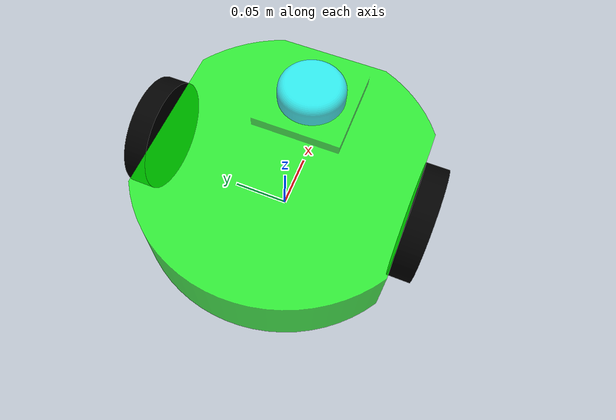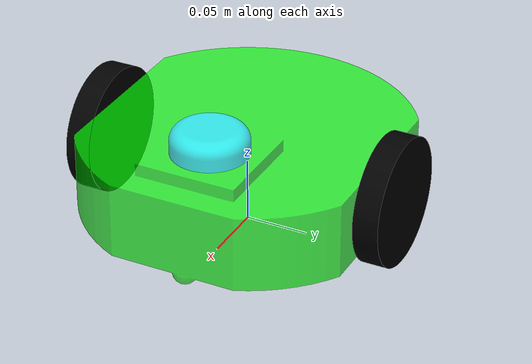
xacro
<?xml version="1.0" ?>
<robot name="tsbenzbot" xmlns:xacro="http://www.ros.org/wiki/xacro">

<xacro:include filename="$(find tsbenzbot_description)/urdf/materials.xacro" />
<xacro:include filename="$(find tsbenzbot_description)/urdf/tsbenzbot.trans" />
<xacro:include filename="$(find tsbenzbot_description)/urdf/tsbenzbot.gazebo" />

<link name="base_link">
  <inertial>
    <origin rpy="0 0 0" xyz="-0.0004048792431578201 0.0 0.05061342669444969"/>
    <mass value="4.266982945407815"/>
    <inertia ixx="0.016096" ixy="-0.0" ixz="-0.000195" iyy="0.019904" iyz="0.0" izz="0.033237"/>
  </inertial>
  <visual>
    <origin rpy="0 0 0" xyz="0 0 0"/>
    <geometry>
      <mesh filename="package://tsbenzbot_description/meshes/base_link.stl" scale="0.001 0.001 0.001"/>
    </geometry>
    <material name="lime"/>
  </visual>
  <collision>
    <origin rpy="0 0 0" xyz="0 0 0"/>
    <geometry>
      <mesh filename="package://tsbenzbot_description/meshes/base_link.stl" scale="0.001 0.001 0.001"/>
    </geometry>
  </collision>
</link>

<link name="r_1">
  <inertial>
    <origin rpy="0 0 0" xyz="-7.237528875152536e-18 -0.009999999999999995 -1.3877787807814457e-17"/>
    <mass value="1.2330751165339937"/>
    <inertia ixx="0.000812" ixy="0.0" ixz="-0.0" iyy="0.001541" iyz="0.0" izz="0.000812"/>
  </inertial>
  <visual>
    <origin rpy="0 0 0" xyz="0.0 0.11 -0.05"/>
    <geometry>
      <mesh filename="package://tsbenzbot_description/meshes/r_1.stl" scale="0.001 0.001 0.001"/>
    </geometry>
    <material name="black"/>
  </visual>
  <collision>
    <origin rpy="0 0 0" xyz="0.0 0.11 -0.05"/>
    <geometry>
      <mesh filename="package://tsbenzbot_description/meshes/r_1.stl" scale="0.001 0.001 0.001"/>
    </geometry>
  </collision>
</link>

<link name="l_1">
  <inertial>
    <origin rpy="0 0 0" xyz="-7.237528875152536e-18 0.009999999999999995 -1.3877787807814457e-17"/>
    <mass value="1.2330751165339937"/>
    <inertia ixx="0.000812" ixy="0.0" ixz="-0.0" iyy="0.001541" iyz="-0.0" izz="0.000812"/>
  </inertial>
  <visual>
    <origin rpy="0 0 0" xyz="-0.0 -0.11 -0.05"/>
    <geometry>
      <mesh filename="package://tsbenzbot_description/meshes/l_1.stl" scale="0.001 0.001 0.001"/>
    </geometry>
    <material name="black"/>
  </visual>
  <collision>
    <origin rpy="0 0 0" xyz="-0.0 -0.11 -0.05"/>
    <geometry>
      <mesh filename="package://tsbenzbot_description/meshes/l_1.stl" scale="0.001 0.001 0.001"/>
    </geometry>
  </collision>
</link>

<link name="lidar_1">
  <inertial>
    <origin rpy="0 0 0" xyz="-6.938893903907228e-18 -5.38241998862892e-18 0.009454633195977669"/>
    <mass value="0.4145169264011764"/>
    <inertia ixx="0.000101" ixy="-0.0" ixz="-0.0" iyy="0.000101" iyz="-0.0" izz="0.000177"/>
  </inertial>
  <visual>
    <origin rpy="0 0 0" xyz="-0.06 -0.0 -0.09"/>
    <geometry>
      <mesh filename="package://tsbenzbot_description/meshes/lidar_1.stl" scale="0.001 0.001 0.001"/>
    </geometry>
    <material name="aqua"/>
  </visual>
  <collision>
    <origin rpy="0 0 0" xyz="-0.06 -0.0 -0.09"/>
    <geometry>
      <mesh filename="package://tsbenzbot_description/meshes/lidar_1.stl" scale="0.001 0.001 0.001"/>
    </geometry>
  </collision>
</link>

<gazebo reference="base_link">
<material>Gazebo/Green</material>
</gazebo>

<gazebo reference="l_1">
<material>Gazebo/Black</material>
</gazebo>

<gazebo reference="r_1">
<material>Gazebo/Black</material>
</gazebo>

<gazebo reference="lidar_1">
<material>Gazebo/SkyBlue</material>
</gazebo>

<joint name="Rev1" type="continuous">
  <origin rpy="0 0 0" xyz="0.0 -0.11 0.05"/>
  <parent link="base_link"/>
  <child link="r_1"/>
  <axis xyz="0.0 1.0 0.0"/>
</joint>

<joint name="Rev2" type="continuous">
  <origin rpy="0 0 0" xyz="0.0 0.11 0.05"/>
  <parent link="base_link"/>
  <child link="l_1"/>
  <axis xyz="0.0 1.0 0.0"/>
</joint>

<joint name="Rigid3" type="fixed">
  <origin rpy="0 0 0" xyz="0.06 0.0 0.09"/>
  <parent link="base_link"/>
  <child link="lidar_1"/>
</joint>

</robot>

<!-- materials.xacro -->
<robot name="tsbenzbot" xmlns:xacro="http://www.ros.org/wiki/xacro" >

<material name="silver">
  <color rgba="0.700 0.700 0.700 1.000"/>
</material>

<material name="black">
  <color rgba="0.0 0.0 0.0 1.000"/>
</material>

<material name="aqua">
  <color rgba="0.0 1 1 0.70"/>
</material>

<material name="lime">
  <color rgba="0.0 1 0.0 0.70"/>
</material>

</robot>

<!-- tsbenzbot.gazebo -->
<robot name="tsbenzbot" xmlns:xacro="http://www.ros.org/wiki/xacro" >

<xacro:property name="body_color" value="Gazebo/Silver" />

<gazebo>
  <plugin filename="libgazebo_ros_control.so" name="control"/>
</gazebo>
<gazebo reference="base_link">
  <material>${body_color}</material>
  <mu1>0.1</mu1>
  <mu2>0.1</mu2>
  <selfCollide>true</selfCollide>
  <gravity>true</gravity>
</gazebo>

<gazebo reference="r_1">
  <material>${body_color}</material>
  <mu1>1500</mu1>
  <mu2>1500</mu2>
  <selfCollide>true</selfCollide>
</gazebo>

<gazebo reference="l_1">
  <material>${body_color}</material>
  <mu1>1500</mu1>
  <mu2>1500</mu2>
  <selfCollide>true</selfCollide>
</gazebo>

<gazebo reference="lidar_1">
  <material>${body_color}</material>
  <mu1>0.2</mu1>
  <mu2>0.2</mu2>
  <selfCollide>true</selfCollide>
</gazebo>
<gazebo>
  <plugin name="differential_drive_controller" filename="libgazebo_ros_diff_drive.so">

    <!-- Plugin update rate in Hz -->
    <updateRate>100</updateRate>

    <!-- Name of left joint, defaults to `left_joint` -->
    <leftJoint>Rev2</leftJoint>

    <!-- Name of right joint, defaults to `right_joint` -->
    <rightJoint>Rev1</rightJoint>

    <!-- The distance from the center of one wheel to the other, in meters, defaults to 0.34 m -->
    <wheelSeparation>0.24</wheelSeparation>

    <!-- Diameter of the wheels, in meters, defaults to 0.15 m -->
    <wheelDiameter>0.1</wheelDiameter>

    <!-- Wheel acceleration, in rad/s^2, defaults to 0.0 rad/s^2 -->
    <wheelAcceleration>1.0</wheelAcceleration>

    <!-- Maximum torque which the wheels can produce, in Nm, defaults to 5 Nm -->
    <wheelTorque>40</wheelTorque>

    <!-- Topic to receive geometry_msgs/Twist message commands, defaults to `cmd_vel` -->
    <commandTopic>cmd_vel</commandTopic>

    <!-- Topic to publish nav_msgs/Odometry messages, defaults to `odom` -->
    <odometryTopic>odom</odometryTopic>

    <!-- Odometry frame, defaults to `odom` -->
    <odometryFrame>odom</odometryFrame>

    <!-- Robot frame to calculate odometry from, defaults to `base_footprint` -->
    <robotBaseFrame>base_link</robotBaseFrame>

    <!-- Odometry source, 0 for ENCODER, 1 for WORLD, defaults to WORLD -->
    <odometrySource>1</odometrySource>

    <!-- Set to true to publish transforms for the wheel links, defaults to false -->
    <publishWheelTF>true</publishWheelTF>

    <!-- Set to true to publish transforms for the odometry, defaults to true -->
    <publishOdom>true</publishOdom>

    <!-- Set to true to publish sensor_msgs/JointState on /joint_states for the wheel joints, defaults to false -->
    <publishWheelJointState>true</publishWheelJointState>

    <!-- Set to true to swap right and left wheels, defaults to true -->
    <legacyMode>false</legacyMode>
  </plugin>
</gazebo>

  <!-- hokuyo -->
  <gazebo reference="lidar_1">
    <sensor type="ray" name="head_hokuyo_sensor">
      <pose>0 0 0 0 0 0</pose>
      <visualize>false</visualize>
      <update_rate>40</update_rate>
      <ray>
        <scan>
          <horizontal>
            <samples>720</samples>
            <resolution>1</resolution>
            <min_angle>-3.14</min_angle>
            <max_angle>3.14</max_angle>
          </horizontal>
        </scan>
        <range>
          <min>0.20</min>
          <max>8.0</max>
          <resolution>0.01</resolution>
        </range>
        <noise>
          <type>gaussian</type>
          <mean>0.0</mean>
          <stddev>0.01</stddev>
        </noise>
      </ray>
      <plugin name="gazebo_ros_head_hokuyo_controller" filename="libgazebo_ros_laser.so">
        <topicName>/scan</topicName>
        <frameName>lidar_1</frameName>
      </plugin>
    </sensor>
  </gazebo>

  <gazebo reference="lidar_1">
    <gravity>true</gravity>
    <sensor name="imu_sensor" type="imu">
      <always_on>true</always_on>
      <update_rate>100</update_rate>
      <visualize>true</visualize>
      <topic>__default_topic__</topic>
      <plugin filename="libgazebo_ros_imu_sensor.so" name="imu_plugin">
        <topicName>imu</topicName>
        <bodyName>imu_link</bodyName>
        <updateRateHZ>10.0</updateRateHZ>
        <gaussianNoise>0.0</gaussianNoise>
        <xyzOffset>0 0 0</xyzOffset>
        <rpyOffset>0 0 0</rpyOffset>
        <frameName>lidar_1</frameName>
        <initialOrientationAsReference>false</initialOrientationAsReference>
      </plugin>
      <pose>0 0 0 0 0 0</pose>
    </sensor>
  </gazebo>
</robot>
